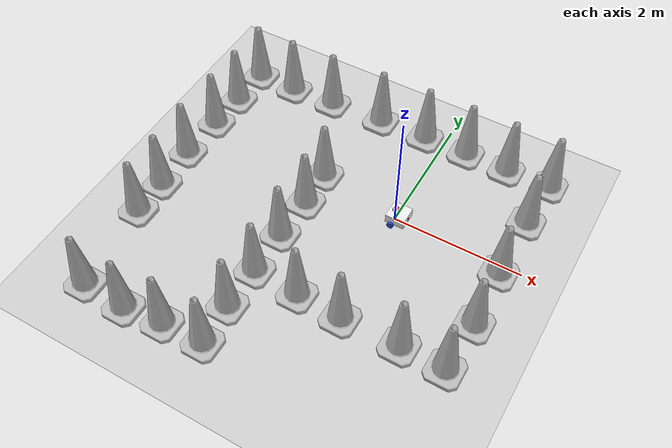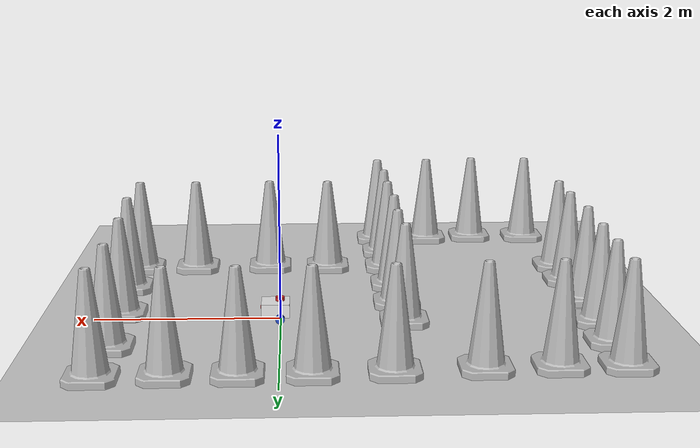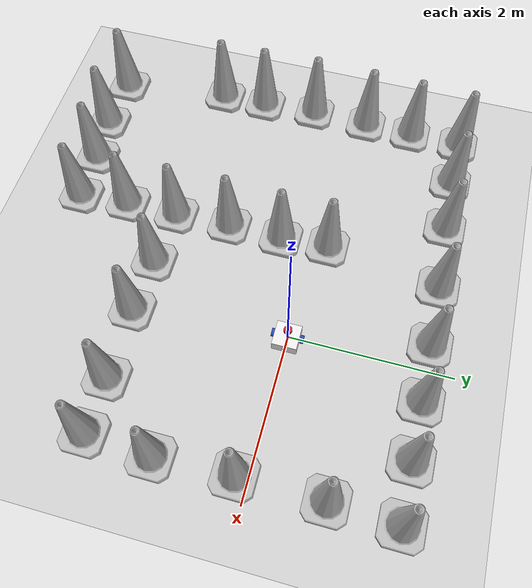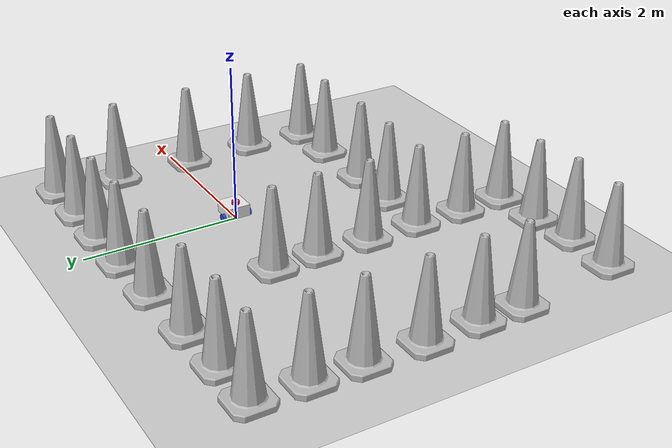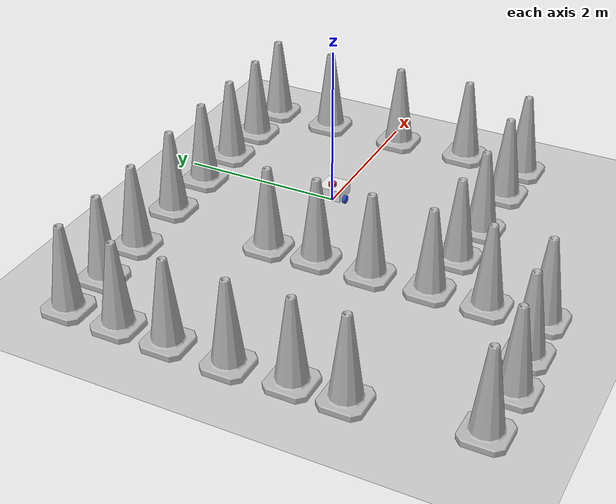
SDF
<sdf version="1.7">
 <world name="default">
  <light name="sun" type="directional">
   <pose>0 0 10 0 -0 0</pose>
   <diffuse>0.8 0.8 0.8 1</diffuse>
   <specular>0.2 0.2 0.2 1</specular>
   <attenuation>
    <range>1000</range>
    <constant>0.9</constant>
    <linear>0.01</linear>
    <quadratic>0.001</quadratic>
   </attenuation>
   <direction>-0.5 0.1 -0.9</direction>
   <spot><inner_angle>0</inner_angle><outer_angle>0</outer_angle><falloff>0</falloff></spot>
  </light>
  <model name="ground_plane">
   <static>1</static>
   <link name="link">
    <collision name="collision">
     <geometry><plane><normal>0 0 1</normal><size>100 100</size></plane></geometry>
     <surface>
      <contact><collide_bitmask>65535</collide_bitmask></contact>
      <friction><ode><mu>100</mu><mu2>50</mu2></ode></friction>
     </surface>
    </collision>
    <visual name="visual">
     <cast_shadows>0</cast_shadows>
     <geometry><plane><normal>0 0 1</normal><size>100 100</size></plane></geometry>
     <material>
      <script><uri>file://media/materials/scripts/gazebo.material</uri><name>Gazebo/Grey</name></script>
     </material>
    </visual>
   </link>
  </model>
  <gravity>0 0 -9.8</gravity>
  <magnetic_field>6e-06 2.3e-05 -4.2e-05</magnetic_field>
  <atmosphere type="adiabatic"/>
  <physics type="ode">
   <max_step_size>0.001</max_step_size>
   <real_time_factor>1</real_time_factor>
   <real_time_update_rate>1000</real_time_update_rate>
  </physics>
  <scene><ambient>0.4 0.4 0.4 1</ambient><background>0.7 0.7 0.7 1</background><shadows>1</shadows></scene>
  <audio><device>default</device></audio>
  <spherical_coordinates>
   <surface_model>EARTH_WGS84</surface_model>
   <latitude_deg>0</latitude_deg>
   <longitude_deg>0</longitude_deg>
   <elevation>0</elevation>
   <heading_deg>0</heading_deg>
  </spherical_coordinates>
  <model name="my_bot">
   <link name="base_link">
    <inertial>
     <pose>0.055714 0 0.078571 0 -0 0</pose>
     <mass>0.7</mass>
     <inertia>
      <ixx>0.0064169</ixx>
      <ixy>0</ixy>
      <ixz>0.00118929</ixz>
      <iyy>0.00745405</iyy>
      <iyz>0</iyz>
      <izz>0.00876214</izz>
     </inertia>
    </inertial>
    <collision name="base_link_fixed_joint_lump__chassis_collision">
     <pose>0.05 0 0.075 0 -0 0</pose>
     <geometry><box><size>0.3 0.3 0.15</size></box></geometry>
    </collision>
    <collision name="base_link_fixed_joint_lump__caster_wheel_collision_1">
     <pose>0.14 0 0 0 -0 0</pose>
     <geometry><sphere><radius>0.05</radius></sphere></geometry>
     <surface><friction><ode><mu>0.001</mu><mu2>0.001</mu2></ode></friction></surface>
    </collision>
    <collision name="base_link_fixed_joint_lump__laser_frame_collision_2">
     <pose>0 0 0.175 0 -0 0</pose>
     <geometry><cylinder><length>0.04</length><radius>0.05</radius></cylinder></geometry>
    </collision>
    <visual name="base_link_fixed_joint_lump__chassis_visual">
     <pose>0.05 0 0.075 0 -0 0</pose>
     <geometry><box><size>0.3 0.3 0.15</size></box></geometry>
     <material>
      <script><name>Gazebo/White</name><uri>file://media/materials/scripts/gazebo.material</uri></script>
     </material>
    </visual>
    <visual name="base_link_fixed_joint_lump__camera_link_visual_1">
     <pose>0.205 0 0.08 0 -0 0</pose>
     <geometry><box><size>0.01 0.03 0.03</size></box></geometry>
     <material>
      <script><name>Gazebo/Red</name><uri>file://media/materials/scripts/gazebo.material</uri></script>
     </material>
    </visual>
    <visual name="base_link_fixed_joint_lump__caster_wheel_visual_2">
     <pose>0.14 0 0 0 -0 0</pose>
     <geometry><sphere><radius>0.05</radius></sphere></geometry>
     <material>
      <script><name>Gazebo/Black</name><uri>file://media/materials/scripts/gazebo.material</uri></script>
     </material>
    </visual>
    <visual name="base_link_fixed_joint_lump__laser_frame_visual_3">
     <pose>0 0 0.175 0 -0 0</pose>
     <geometry><cylinder><length>0.04</length><radius>0.05</radius></cylinder></geometry>
     <material>
      <script><name>Gazebo/Red</name><uri>file://media/materials/scripts/gazebo.material</uri></script>
     </material>
    </visual>
    <sensor name="camera" type="camera">
     <visualize>1</visualize>
     <update_rate>10</update_rate>
     <camera>
      <horizontal_fov>1.089</horizontal_fov>
      <image><format>R8G8B8</format><width>640</width><height>480</height></image>
      <clip><near>0.05</near><far>8</far></clip>
     </camera>
     <plugin name="camera_controller" filename="libgazebo_ros_camera.so">
      <frame_name>camera_link_optical</frame_name>
     </plugin>
     <pose>0.205 0 0.08 0 -0 0</pose>
    </sensor>
    <sensor name="laser" type="ray">
     <visualize>0</visualize>
     <update_rate>10</update_rate>
     <ray>
      <scan>
       <horizontal>
        <samples>360</samples>
        <min_angle>-3.14</min_angle>
        <max_angle>3.14</max_angle>
        <resolution>1</resolution>
       </horizontal>
       <vertical><samples>1</samples><min_angle>0</min_angle><max_angle>0</max_angle></vertical>
      </scan>
      <range><min>0.3</min><max>12</max></range>
     </ray>
     <plugin name="laser_controller" filename="libgazebo_ros_ray_sensor.so">
      <ros><argument>~/out:=scan</argument></ros>
      <output_type>sensor_msgs/LaserScan</output_type>
      <frame_name>laser_frame</frame_name>
     </plugin>
     <pose>0 0 0.175 0 -0 0</pose>
    </sensor>
   </link>
   <joint name="left_wheel_joint" type="revolute">
    <pose relative_to="base_link">0 0.175 0 -1.5708 0 0</pose>
    <parent>base_link</parent>
    <child>left_wheel</child>
    <axis>
     <xyz>0 0 1</xyz>
     <limit><lower>-1e+16</lower><upper>1e+16</upper></limit>
     <dynamics><spring_reference>0</spring_reference><spring_stiffness>0</spring_stiffness></dynamics>
    </axis>
   </joint>
   <link name="left_wheel">
    <pose relative_to="left_wheel_joint">0 0 0 0 -0 0</pose>
    <inertial>
     <mass>0.1</mass>
     <inertia>
      <ixx>7.58333e-05</ixx>
      <ixy>0</ixy>
      <ixz>0</ixz>
      <iyy>7.58333e-05</iyy>
      <iyz>0</iyz>
      <izz>0.000125</izz>
     </inertia>
    </inertial>
    <collision name="left_wheel_collision">
     <geometry><cylinder><length>0.04</length><radius>0.05</radius></cylinder></geometry>
    </collision>
    <visual name="left_wheel_visual">
     <geometry><cylinder><length>0.04</length><radius>0.05</radius></cylinder></geometry>
     <material>
      <script><name>Gazebo/Blue</name><uri>file://media/materials/scripts/gazebo.material</uri></script>
     </material>
    </visual>
   </link>
   <joint name="right_wheel_joint" type="revolute">
    <pose relative_to="base_link">0 -0.175 0 1.5708 -0 0</pose>
    <parent>base_link</parent>
    <child>right_wheel</child>
    <axis>
     <xyz>0 0 -1</xyz>
     <limit><lower>-1e+16</lower><upper>1e+16</upper></limit>
     <dynamics><spring_reference>0</spring_reference><spring_stiffness>0</spring_stiffness></dynamics>
    </axis>
   </joint>
   <link name="right_wheel">
    <pose relative_to="right_wheel_joint">0 0 0 0 -0 0</pose>
    <inertial>
     <mass>0.1</mass>
     <inertia>
      <ixx>7.58333e-05</ixx>
      <ixy>0</ixy>
      <ixz>0</ixz>
      <iyy>7.58333e-05</iyy>
      <iyz>0</iyz>
      <izz>0.000125</izz>
     </inertia>
    </inertial>
    <collision name="right_wheel_collision">
     <geometry><cylinder><length>0.04</length><radius>0.05</radius></cylinder></geometry>
    </collision>
    <visual name="right_wheel_visual">
     <geometry><cylinder><length>0.04</length><radius>0.05</radius></cylinder></geometry>
     <material>
      <script><name>Gazebo/Blue</name><uri>file://media/materials/scripts/gazebo.material</uri></script>
     </material>
    </visual>
   </link>
   <static>0</static>
   <plugin name="diff_drive" filename="libgazebo_ros_diff_drive.so">
    <left_joint>left_wheel_joint</left_joint>
    <right_joint>right_wheel_joint</right_joint>
    <wheel_separation>0.35</wheel_separation>
    <wheel_diameter>0.1</wheel_diameter>
    <max_wheel_torque>200</max_wheel_torque>
    <max_wheel_acceleration>10.0</max_wheel_acceleration>
    <odometry_frame>odom</odometry_frame>
    <robot_base_frame>base_link</robot_base_frame>
    <publish_odom>1</publish_odom>
    <publish_odom_tf>1</publish_odom_tf>
    <publish_wheel_tf>1</publish_wheel_tf>
   </plugin>
   <pose>0.00604 4e-05 0.05 0 1e-06 0.000145</pose>
  </model>
  <model name="Construction Cone">
   <link name="link">
    <collision name="collision">
     <geometry>
      <mesh><scale>10 10 10</scale><uri>model://construction_cone/meshes/construction_cone.dae</uri></mesh>
     </geometry>
    </collision>
    <visual name="visual">
     <geometry>
      <mesh><scale>10 10 10</scale><uri>model://construction_cone/meshes/construction_cone.dae</uri></mesh>
     </geometry>
    </visual>
    <inertial>
     <inertia><ixx>1</ixx><ixy>0</ixy><ixz>0</ixz><iyy>1</iyy><iyz>0</iyz><izz>1</izz></inertia>
     <mass>1</mass>
    </inertial>
   </link>
   <pose>1.75358 1.68643 -0 0 -0 0</pose>
  </model>
  <model name="Construction Cone_clone">
   <link name="link">
    <collision name="collision">
     <geometry>
      <mesh><scale>10 10 10</scale><uri>model://construction_cone/meshes/construction_cone.dae</uri></mesh>
     </geometry>
    </collision>
    <visual name="visual">
     <geometry>
      <mesh><scale>10 10 10</scale><uri>model://construction_cone/meshes/construction_cone.dae</uri></mesh>
     </geometry>
    </visual>
    <inertial>
     <inertia><ixx>1</ixx><ixy>0</ixy><ixz>0</ixz><iyy>1</iyy><iyz>0</iyz><izz>1</izz></inertia>
     <mass>1</mass>
    </inertial>
   </link>
   <pose>1.71702 0.868095 -0 0 -0 0</pose>
  </model>
  <model name="Construction Cone_clone_0">
   <link name="link">
    <collision name="collision">
     <geometry>
      <mesh><scale>10 10 10</scale><uri>model://construction_cone/meshes/construction_cone.dae</uri></mesh>
     </geometry>
    </collision>
    <visual name="visual">
     <geometry>
      <mesh><scale>10 10 10</scale><uri>model://construction_cone/meshes/construction_cone.dae</uri></mesh>
     </geometry>
    </visual>
    <inertial>
     <inertia><ixx>1</ixx><ixy>0</ixy><ixz>0</ixz><iyy>1</iyy><iyz>0</iyz><izz>1</izz></inertia>
     <mass>1</mass>
    </inertial>
   </link>
   <pose>1.71423 -0.151671 -5e-06 -4e-06 1e-06 0</pose>
  </model>
  <model name="Construction Cone_clone_1">
   <link name="link">
    <collision name="collision">
     <geometry>
      <mesh><scale>10 10 10</scale><uri>model://construction_cone/meshes/construction_cone.dae</uri></mesh>
     </geometry>
    </collision>
    <visual name="visual">
     <geometry>
      <mesh><scale>10 10 10</scale><uri>model://construction_cone/meshes/construction_cone.dae</uri></mesh>
     </geometry>
    </visual>
    <inertial>
     <inertia><ixx>1</ixx><ixy>0</ixy><ixz>0</ixz><iyy>1</iyy><iyz>0</iyz><izz>1</izz></inertia>
     <mass>1</mass>
    </inertial>
   </link>
   <pose>1.75327 -1.08803 -2e-06 -3e-06 -1e-06 -0</pose>
  </model>
  <model name="Construction Cone_clone_2">
   <link name="link">
    <collision name="collision">
     <geometry>
      <mesh><scale>10 10 10</scale><uri>model://construction_cone/meshes/construction_cone.dae</uri></mesh>
     </geometry>
    </collision>
    <visual name="visual">
     <geometry>
      <mesh><scale>10 10 10</scale><uri>model://construction_cone/meshes/construction_cone.dae</uri></mesh>
     </geometry>
    </visual>
    <inertial>
     <inertia><ixx>1</ixx><ixy>0</ixy><ixz>0</ixz><iyy>1</iyy><iyz>0</iyz><izz>1</izz></inertia>
     <mass>1</mass>
    </inertial>
   </link>
   <pose>1.0686 1.66391 -8e-06 -6e-06 -0 -0</pose>
  </model>
  <model name="Construction Cone_clone_3">
   <link name="link">
    <collision name="collision">
     <geometry>
      <mesh><scale>10 10 10</scale><uri>model://construction_cone/meshes/construction_cone.dae</uri></mesh>
     </geometry>
    </collision>
    <visual name="visual">
     <geometry>
      <mesh><scale>10 10 10</scale><uri>model://construction_cone/meshes/construction_cone.dae</uri></mesh>
     </geometry>
    </visual>
    <inertial>
     <inertia><ixx>1</ixx><ixy>0</ixy><ixz>0</ixz><iyy>1</iyy><iyz>0</iyz><izz>1</izz></inertia>
     <mass>1</mass>
    </inertial>
   </link>
   <pose>0.385677 1.66156 -0 0 -1e-06 0</pose>
  </model>
  <model name="Construction Cone_clone_4">
   <link name="link">
    <collision name="collision">
     <geometry>
      <mesh><scale>10 10 10</scale><uri>model://construction_cone/meshes/construction_cone.dae</uri></mesh>
     </geometry>
    </collision>
    <visual name="visual">
     <geometry>
      <mesh><scale>10 10 10</scale><uri>model://construction_cone/meshes/construction_cone.dae</uri></mesh>
     </geometry>
    </visual>
    <inertial>
     <inertia><ixx>1</ixx><ixy>0</ixy><ixz>0</ixz><iyy>1</iyy><iyz>0</iyz><izz>1</izz></inertia>
     <mass>1</mass>
    </inertial>
   </link>
   <pose>-0.319754 1.65341 0 -0 -0 -0</pose>
  </model>
  <model name="Construction Cone_clone_5">
   <link name="link">
    <collision name="collision">
     <geometry>
      <mesh><scale>10 10 10</scale><uri>model://construction_cone/meshes/construction_cone.dae</uri></mesh>
     </geometry>
    </collision>
    <visual name="visual">
     <geometry>
      <mesh><scale>10 10 10</scale><uri>model://construction_cone/meshes/construction_cone.dae</uri></mesh>
     </geometry>
    </visual>
    <inertial>
     <inertia><ixx>1</ixx><ixy>0</ixy><ixz>0</ixz><iyy>1</iyy><iyz>0</iyz><izz>1</izz></inertia>
     <mass>1</mass>
    </inertial>
   </link>
   <pose>1.70282 -1.89243 -5e-06 -4e-06 1e-06 0</pose>
  </model>
  <model name="Construction Cone_clone_6">
   <link name="link">
    <collision name="collision">
     <geometry>
      <mesh><scale>10 10 10</scale><uri>model://construction_cone/meshes/construction_cone.dae</uri></mesh>
     </geometry>
    </collision>
    <visual name="visual">
     <geometry>
      <mesh><scale>10 10 10</scale><uri>model://construction_cone/meshes/construction_cone.dae</uri></mesh>
     </geometry>
    </visual>
    <inertial>
     <inertia><ixx>1</ixx><ixy>0</ixy><ixz>0</ixz><iyy>1</iyy><iyz>0</iyz><izz>1</izz></inertia>
     <mass>1</mass>
    </inertial>
   </link>
   <pose>1.03397 -1.88805 -0 0 -0 0</pose>
  </model>
  <model name="Construction Cone_clone_7">
   <link name="link">
    <collision name="collision">
     <geometry>
      <mesh><scale>10 10 10</scale><uri>model://construction_cone/meshes/construction_cone.dae</uri></mesh>
     </geometry>
    </collision>
    <visual name="visual">
     <geometry>
      <mesh><scale>10 10 10</scale><uri>model://construction_cone/meshes/construction_cone.dae</uri></mesh>
     </geometry>
    </visual>
    <inertial>
     <inertia><ixx>1</ixx><ixy>0</ixy><ixz>0</ixz><iyy>1</iyy><iyz>0</iyz><izz>1</izz></inertia>
     <mass>1</mass>
    </inertial>
   </link>
   <pose>0.147739 -1.90753 -0 0 -1e-06 0</pose>
  </model>
  <model name="Construction Cone_clone_8">
   <link name="link">
    <collision name="collision">
     <geometry>
      <mesh><scale>10 10 10</scale><uri>model://construction_cone/meshes/construction_cone.dae</uri></mesh>
     </geometry>
    </collision>
    <visual name="visual">
     <geometry>
      <mesh><scale>10 10 10</scale><uri>model://construction_cone/meshes/construction_cone.dae</uri></mesh>
     </geometry>
    </visual>
    <inertial>
     <inertia><ixx>1</ixx><ixy>0</ixy><ixz>0</ixz><iyy>1</iyy><iyz>0</iyz><izz>1</izz></inertia>
     <mass>1</mass>
    </inertial>
   </link>
   <pose>-0.553518 -1.87706 -0 0 -1e-06 0</pose>
  </model>
  <model name="Construction Cone_clone_9">
   <link name="link">
    <collision name="collision">
     <geometry>
      <mesh><scale>10 10 10</scale><uri>model://construction_cone/meshes/construction_cone.dae</uri></mesh>
     </geometry>
    </collision>
    <visual name="visual">
     <geometry>
      <mesh><scale>10 10 10</scale><uri>model://construction_cone/meshes/construction_cone.dae</uri></mesh>
     </geometry>
    </visual>
    <inertial>
     <inertia><ixx>1</ixx><ixy>0</ixy><ixz>0</ixz><iyy>1</iyy><iyz>0</iyz><izz>1</izz></inertia>
     <mass>1</mass>
    </inertial>
   </link>
   <pose>-1.27758 -1.83043 -6e-06 2e-06 -0 0</pose>
  </model>
  <model name="Construction Cone_clone_10">
   <link name="link">
    <collision name="collision">
     <geometry>
      <mesh><scale>10 10 10</scale><uri>model://construction_cone/meshes/construction_cone.dae</uri></mesh>
     </geometry>
    </collision>
    <visual name="visual">
     <geometry>
      <mesh><scale>10 10 10</scale><uri>model://construction_cone/meshes/construction_cone.dae</uri></mesh>
     </geometry>
    </visual>
    <inertial>
     <inertia><ixx>1</ixx><ixy>0</ixy><ixz>0</ixz><iyy>1</iyy><iyz>0</iyz><izz>1</izz></inertia>
     <mass>1</mass>
    </inertial>
   </link>
   <pose>-1.30034 -1.11546 -0 0 -1e-06 0</pose>
  </model>
  <model name="Construction Cone_clone_11">
   <link name="link">
    <collision name="collision">
     <geometry>
      <mesh><scale>10 10 10</scale><uri>model://construction_cone/meshes/construction_cone.dae</uri></mesh>
     </geometry>
    </collision>
    <visual name="visual">
     <geometry>
      <mesh><scale>10 10 10</scale><uri>model://construction_cone/meshes/construction_cone.dae</uri></mesh>
     </geometry>
    </visual>
    <inertial>
     <inertia><ixx>1</ixx><ixy>0</ixy><ixz>0</ixz><iyy>1</iyy><iyz>0</iyz><izz>1</izz></inertia>
     <mass>1</mass>
    </inertial>
   </link>
   <pose>-1.2847 -0.424356 -8e-06 1e-06 -0 0</pose>
  </model>
  <model name="Construction Cone_clone_12">
   <link name="link">
    <collision name="collision">
     <geometry>
      <mesh><scale>10 10 10</scale><uri>model://construction_cone/meshes/construction_cone.dae</uri></mesh>
     </geometry>
    </collision>
    <visual name="visual">
     <geometry>
      <mesh><scale>10 10 10</scale><uri>model://construction_cone/meshes/construction_cone.dae</uri></mesh>
     </geometry>
    </visual>
    <inertial>
     <inertia><ixx>1</ixx><ixy>0</ixy><ixz>0</ixz><iyy>1</iyy><iyz>0</iyz><izz>1</izz></inertia>
     <mass>1</mass>
    </inertial>
   </link>
   <pose>-1.31517 0.183402 -6e-06 -4e-06 0 0</pose>
  </model>
  <model name="Construction Cone_clone_13">
   <link name="link">
    <collision name="collision">
     <geometry>
      <mesh><scale>10 10 10</scale><uri>model://construction_cone/meshes/construction_cone.dae</uri></mesh>
     </geometry>
    </collision>
    <visual name="visual">
     <geometry>
      <mesh><scale>10 10 10</scale><uri>model://construction_cone/meshes/construction_cone.dae</uri></mesh>
     </geometry>
    </visual>
    <inertial>
     <inertia><ixx>1</ixx><ixy>0</ixy><ixz>0</ixz><iyy>1</iyy><iyz>0</iyz><izz>1</izz></inertia>
     <mass>1</mass>
    </inertial>
   </link>
   <pose>-1.0995 1.62788 -8e-06 1e-06 -0 0</pose>
  </model>
  <model name="Construction Cone_clone_14">
   <link name="link">
    <collision name="collision">
     <geometry>
      <mesh><scale>10 10 10</scale><uri>model://construction_cone/meshes/construction_cone.dae</uri></mesh>
     </geometry>
    </collision>
    <visual name="visual">
     <geometry>
      <mesh><scale>10 10 10</scale><uri>model://construction_cone/meshes/construction_cone.dae</uri></mesh>
     </geometry>
    </visual>
    <inertial>
     <inertia><ixx>1</ixx><ixy>0</ixy><ixz>0</ixz><iyy>1</iyy><iyz>0</iyz><izz>1</izz></inertia>
     <mass>1</mass>
    </inertial>
   </link>
   <pose>-1.97117 1.58079 -0 0 -0 0</pose>
  </model>
  <model name="Construction Cone_clone_15">
   <link name="link">
    <collision name="collision">
     <geometry>
      <mesh><scale>10 10 10</scale><uri>model://construction_cone/meshes/construction_cone.dae</uri></mesh>
     </geometry>
    </collision>
    <visual name="visual">
     <geometry>
      <mesh><scale>10 10 10</scale><uri>model://construction_cone/meshes/construction_cone.dae</uri></mesh>
     </geometry>
    </visual>
    <inertial>
     <inertia><ixx>1</ixx><ixy>0</ixy><ixz>0</ixz><iyy>1</iyy><iyz>0</iyz><izz>1</izz></inertia>
     <mass>1</mass>
    </inertial>
   </link>
   <pose>-2.69294 1.54637 -0 0 -1e-06 0</pose>
  </model>
  <model name="Construction Cone_clone_16">
   <link name="link">
    <collision name="collision">
     <geometry>
      <mesh><scale>10 10 10</scale><uri>model://construction_cone/meshes/construction_cone.dae</uri></mesh>
     </geometry>
    </collision>
    <visual name="visual">
     <geometry>
      <mesh><scale>10 10 10</scale><uri>model://construction_cone/meshes/construction_cone.dae</uri></mesh>
     </geometry>
    </visual>
    <inertial>
     <inertia><ixx>1</ixx><ixy>0</ixy><ixz>0</ixz><iyy>1</iyy><iyz>0</iyz><izz>1</izz></inertia>
     <mass>1</mass>
    </inertial>
   </link>
   <pose>-3.34833 1.55228 -0 0 -1e-06 0</pose>
  </model>
  <model name="Construction Cone_clone_18">
   <link name="link">
    <collision name="collision">
     <geometry>
      <mesh><scale>10 10 10</scale><uri>model://construction_cone/meshes/construction_cone.dae</uri></mesh>
     </geometry>
    </collision>
    <visual name="visual">
     <geometry>
      <mesh><scale>10 10 10</scale><uri>model://construction_cone/meshes/construction_cone.dae</uri></mesh>
     </geometry>
    </visual>
    <inertial>
     <inertia><ixx>1</ixx><ixy>0</ixy><ixz>0</ixz><iyy>1</iyy><iyz>0</iyz><izz>1</izz></inertia>
     <mass>1</mass>
    </inertial>
   </link>
   <pose>-3.37686 0.257409 -6e-06 -4e-06 0 0</pose>
  </model>
  <model name="Construction Cone_clone_17">
   <link name="link">
    <collision name="collision">
     <geometry>
      <mesh><scale>10 10 10</scale><uri>model://construction_cone/meshes/construction_cone.dae</uri></mesh>
     </geometry>
    </collision>
    <visual name="visual">
     <geometry>
      <mesh><scale>10 10 10</scale><uri>model://construction_cone/meshes/construction_cone.dae</uri></mesh>
     </geometry>
    </visual>
    <inertial>
     <inertia><ixx>1</ixx><ixy>0</ixy><ixz>0</ixz><iyy>1</iyy><iyz>0</iyz><izz>1</izz></inertia>
     <mass>1</mass>
    </inertial>
   </link>
   <pose>-3.36199 0.888131 -0 0 -1e-06 0</pose>
  </model>
  <model name="Construction Cone_clone_19">
   <link name="link">
    <collision name="collision">
     <geometry>
      <mesh><scale>10 10 10</scale><uri>model://construction_cone/meshes/construction_cone.dae</uri></mesh>
     </geometry>
    </collision>
    <visual name="visual">
     <geometry>
      <mesh><scale>10 10 10</scale><uri>model://construction_cone/meshes/construction_cone.dae</uri></mesh>
     </geometry>
    </visual>
    <inertial>
     <inertia><ixx>1</ixx><ixy>0</ixy><ixz>0</ixz><iyy>1</iyy><iyz>0</iyz><izz>1</izz></inertia>
     <mass>1</mass>
    </inertial>
   </link>
   <pose>-3.40139 -0.489592 -0 0 -1e-06 0</pose>
  </model>
  <model name="Construction Cone_clone_20">
   <link name="link">
    <collision name="collision">
     <geometry>
      <mesh><scale>10 10 10</scale><uri>model://construction_cone/meshes/construction_cone.dae</uri></mesh>
     </geometry>
    </collision>
    <visual name="visual">
     <geometry>
      <mesh><scale>10 10 10</scale><uri>model://construction_cone/meshes/construction_cone.dae</uri></mesh>
     </geometry>
    </visual>
    <inertial>
     <inertia><ixx>1</ixx><ixy>0</ixy><ixz>0</ixz><iyy>1</iyy><iyz>0</iyz><izz>1</izz></inertia>
     <mass>1</mass>
    </inertial>
   </link>
   <pose>-3.36603 -1.20235 -0 0 -1e-06 0</pose>
  </model>
  <model name="Construction Cone_clone_21">
   <link name="link">
    <collision name="collision">
     <geometry>
      <mesh><scale>10 10 10</scale><uri>model://construction_cone/meshes/construction_cone.dae</uri></mesh>
     </geometry>
    </collision>
    <visual name="visual">
     <geometry>
      <mesh><scale>10 10 10</scale><uri>model://construction_cone/meshes/construction_cone.dae</uri></mesh>
     </geometry>
    </visual>
    <inertial>
     <inertia><ixx>1</ixx><ixy>0</ixy><ixz>0</ixz><iyy>1</iyy><iyz>0</iyz><izz>1</izz></inertia>
     <mass>1</mass>
    </inertial>
   </link>
   <pose>-3.3626 -1.7979 -0 0 -0 0</pose>
  </model>
  <model name="Construction Cone_clone_22">
   <link name="link">
    <collision name="collision">
     <geometry>
      <mesh><scale>10 10 10</scale><uri>model://construction_cone/meshes/construction_cone.dae</uri></mesh>
     </geometry>
    </collision>
    <visual name="visual">
     <geometry>
      <mesh><scale>10 10 10</scale><uri>model://construction_cone/meshes/construction_cone.dae</uri></mesh>
     </geometry>
    </visual>
    <inertial>
     <inertia><ixx>1</ixx><ixy>0</ixy><ixz>0</ixz><iyy>1</iyy><iyz>0</iyz><izz>1</izz></inertia>
     <mass>1</mass>
    </inertial>
   </link>
   <pose>-1.28139 -2.50365 -0 0 -0 0</pose>
  </model>
  <model name="Construction Cone_clone_23">
   <link name="link">
    <collision name="collision">
     <geometry>
      <mesh><scale>10 10 10</scale><uri>model://construction_cone/meshes/construction_cone.dae</uri></mesh>
     </geometry>
    </collision>
    <visual name="visual">
     <geometry>
      <mesh><scale>10 10 10</scale><uri>model://construction_cone/meshes/construction_cone.dae</uri></mesh>
     </geometry>
    </visual>
    <inertial>
     <inertia><ixx>1</ixx><ixy>0</ixy><ixz>0</ixz><iyy>1</iyy><iyz>0</iyz><izz>1</izz></inertia>
     <mass>1</mass>
    </inertial>
   </link>
   <pose>-1.24316 -3.14388 0 -1e-06 0 0</pose>
  </model>
  <model name="Construction Cone_clone_24">
   <link name="link">
    <collision name="collision">
     <geometry>
      <mesh><scale>10 10 10</scale><uri>model://construction_cone/meshes/construction_cone.dae</uri></mesh>
     </geometry>
    </collision>
    <visual name="visual">
     <geometry>
      <mesh><scale>10 10 10</scale><uri>model://construction_cone/meshes/construction_cone.dae</uri></mesh>
     </geometry>
    </visual>
    <inertial>
     <inertia><ixx>1</ixx><ixy>0</ixy><ixz>0</ixz><iyy>1</iyy><iyz>0</iyz><izz>1</izz></inertia>
     <mass>1</mass>
    </inertial>
   </link>
   <pose>-1.89098 -3.1714 -0 0 -0 0</pose>
  </model>
  <model name="Construction Cone_clone_25">
   <link name="link">
    <collision name="collision">
     <geometry>
      <mesh><scale>10 10 10</scale><uri>model://construction_cone/meshes/construction_cone.dae</uri></mesh>
     </geometry>
    </collision>
    <visual name="visual">
     <geometry>
      <mesh><scale>10 10 10</scale><uri>model://construction_cone/meshes/construction_cone.dae</uri></mesh>
     </geometry>
    </visual>
    <inertial>
     <inertia><ixx>1</ixx><ixy>0</ixy><ixz>0</ixz><iyy>1</iyy><iyz>0</iyz><izz>1</izz></inertia>
     <mass>1</mass>
    </inertial>
   </link>
   <pose>-2.49553 -3.23785 -0 0 -0 0</pose>
  </model>
  <model name="Construction Cone_clone_26">
   <link name="link">
    <collision name="collision">
     <geometry>
      <mesh><scale>10 10 10</scale><uri>model://construction_cone/meshes/construction_cone.dae</uri></mesh>
     </geometry>
    </collision>
    <visual name="visual">
     <geometry>
      <mesh><scale>10 10 10</scale><uri>model://construction_cone/meshes/construction_cone.dae</uri></mesh>
     </geometry>
    </visual>
    <inertial>
     <inertia><ixx>1</ixx><ixy>0</ixy><ixz>0</ixz><iyy>1</iyy><iyz>0</iyz><izz>1</izz></inertia>
     <mass>1</mass>
    </inertial>
   </link>
   <pose>-3.19751 -3.19951 -0 0 -0 0</pose>
  </model>
 </world>
</sdf>
